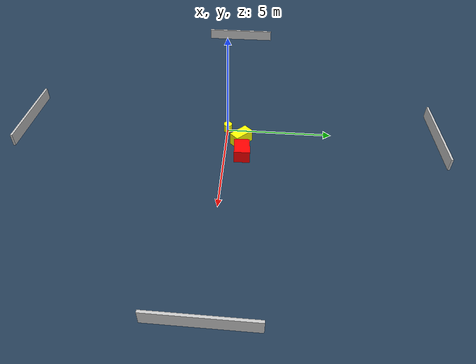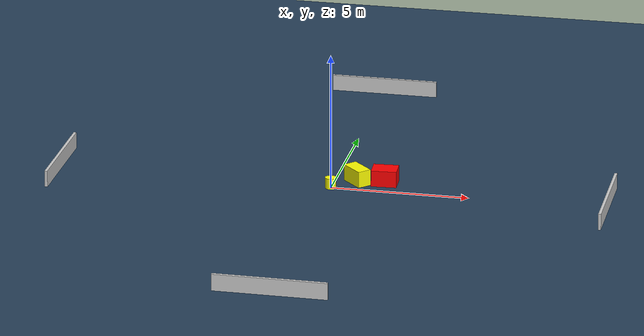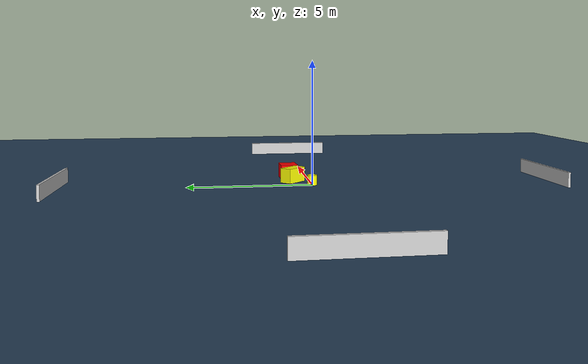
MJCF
<?xml version="1.0" ?>
<mujoco model="generated_environment">
  <option timestep="0.01" integrator="RK4" cone="elliptic"/>
  <default>
    <geom density="1"/>
  </default>
  <asset>
    <texture builtin="gradient" height="3072" name="skybox" rgb1="0.3 0.5 0.7" rgb2="0 0 0" type="skybox" width="512"/>
    <texture builtin="checker" height="300" name="groundplane" rgb1="0.2 0.3 0.4" rgb2="0.1 0.2 0.3" type="2d" width="300"/>
    <material name="groundplane" reflectance="0.2" texrepeat="5 5" texture="groundplane"/>
  </asset>
  <worldbody>
    <light dir="0 0 -1" directional="true" pos="0 0 1.5"/>
    <geom condim="3" friction="0.5 0.005 0.001" material="groundplane" name="floor" pos="0 0 0" size="0 0 0.05" type="plane"/>
    <body name="walls">
      <geom name="wall_1" condim="4" pos="-10.0 0.0 0.3" rgba="0.800000011920929 0.800000011920929 0.800000011920929 1.0" size="0.05 2.0 0.3" type="box"/>
      <geom name="wall_2" condim="4" pos="10.0 0.0 0.3" rgba="0.800000011920929 0.800000011920929 0.800000011920929 1.0" size="0.05 2.0 0.3" type="box"/>
      <geom name="wall_3" condim="4" pos="0.0 -10.0 0.3" rgba="0.800000011920929 0.800000011920929 0.800000011920929 1.0" size="2.0 0.05 0.3" type="box"/>
      <geom name="wall_4" condim="4" pos="0.0 10.0 0.3" rgba="0.800000011920929 0.800000011920929 0.800000011920929 1.0" size="2.0 0.05 0.3" type="box"/>
    </body>
    <body name="robot">
      <joint name="joint_x" type="slide" pos="0 0 0" axis="1 0 0"/>
      <joint name="joint_y" type="slide" pos="0 0 0" axis="0 1 0"/>
      <geom name="robot" type="cylinder" pos="0.0 0.0 0.2" size="0.2 0.2 0.0" mass="5.0" friction="1.0 0.005 0.0001" condim="4" rgba="1.0 1.0 0.0 1.0"/>
    </body>
    <body name="obstacle_1_movable">
      <geom name="obstacle_1_movable" condim="4" pos="0.8256478457603729 0.6977959234727945 0.3" euler="0 0 44.92540113733885" friction="0.0 0.005 0.001" rgba="1.0 1.0 0.0 1.0" size="0.2555074936752968 0.47852353343534143 0.3" type="box" mass="0.1"/>
      <joint type="free"/>
    </body>
    <body name="obstacle_2_static">
      <geom name="obstacle_2_static" condim="4" pos="1.823448390323433 0.7928379986375017 0.3" euler="0 0 3.0218012619537538" friction="0.0 0.005 0.001" rgba="1.0 0.0 0.0 1.0" size="0.45945421714518225 0.3579613160719318 0.3" type="box"/>
    </body>
  </worldbody>
  <actuator>
    <motor name="actuator_x" joint="joint_x" gear="1" ctrlrange="-1 1"/>
    <motor name="actuator_y" joint="joint_y" gear="1" ctrlrange="-1 1"/>
  </actuator>
</mujoco>
